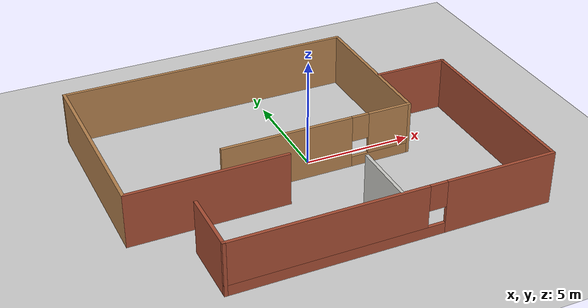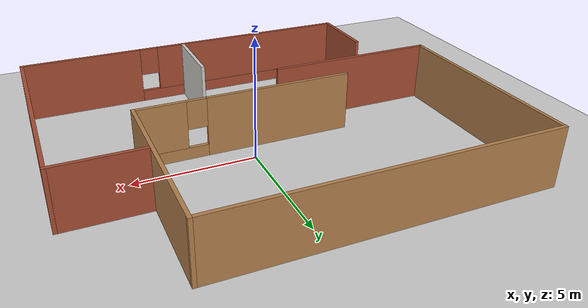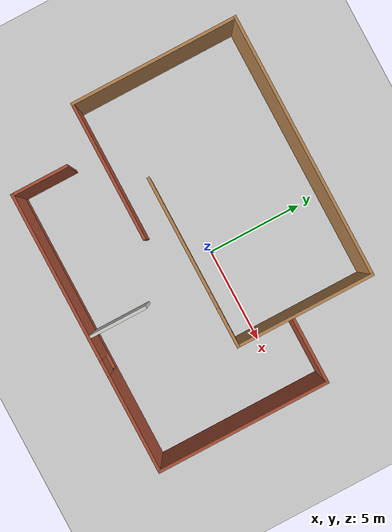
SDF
<sdf version="1.6">
 <world name="default">
  <light name="sun" type="directional">
   <pose>0 0 10 0 -0 0</pose>
   <diffuse>0.8 0.8 0.8 1</diffuse>
   <specular>0.2 0.2 0.2 1</specular>
   <attenuation>
    <range>1000</range>
    <constant>0.9</constant>
    <linear>0.01</linear>
    <quadratic>0.001</quadratic>
   </attenuation>
   <direction>-0.5 0.1 -0.9</direction>
  </light>
  <model name="ground_plane">
   <static>1</static>
   <link name="link">
    <collision name="collision">
     <geometry><plane><normal>0 0 1</normal><size>100 100</size></plane></geometry>
     <surface>
      <contact><collide_bitmask>65535</collide_bitmask></contact>
      <friction><ode><mu>100</mu><mu2>50</mu2></ode></friction>
     </surface>
    </collision>
    <visual name="visual">
     <cast_shadows>0</cast_shadows>
     <geometry><plane><normal>0 0 1</normal><size>100 100</size></plane></geometry>
     <material>
      <script><uri>file://media/materials/scripts/gazebo.material</uri><name>Gazebo/Grey</name></script>
     </material>
    </visual>
   </link>
  </model>
  <gravity>0 0 -9.8</gravity>
  <magnetic_field>6e-06 2.3e-05 -4.2e-05</magnetic_field>
  <atmosphere type="adiabatic"/>
  <physics name="default_physics" default="0" type="ode">
   <max_step_size>0.001</max_step_size>
   <real_time_factor>1</real_time_factor>
   <real_time_update_rate>1000</real_time_update_rate>
  </physics>
  <scene><ambient>0.4 0.4 0.4 1</ambient><background>0.7 0.7 0.7 1</background><shadows>1</shadows></scene>
  <audio><device>default</device></audio>
  <spherical_coordinates>
   <surface_model>EARTH_WGS84</surface_model>
   <latitude_deg>0</latitude_deg>
   <longitude_deg>0</longitude_deg>
   <elevation>0</elevation>
   <heading_deg>0</heading_deg>
  </spherical_coordinates>
  <model name="map">
   <pose>-0.654127 -0.438316 0 0 -0 0</pose>
   <link name="Wall_0">
    <pose>0.659125 -0.568614 0 0 -0 0</pose>
    <visual name="Wall_0_Visual_0">
     <pose>-1.44367 0 1.25 0 -0 0</pose>
     <geometry><box><size>6.11267 0.15 2.5</size></box></geometry>
     <material>
      <script><uri>file://media/materials/scripts/gazebo.material</uri><name>Gazebo/Wood</name></script>
      <ambient>1 1 1 1</ambient>
     </material>
     <meta><layer>0</layer></meta>
    </visual>
    <collision name="Wall_0_Collision_0">
     <geometry><box><size>6.11267 0.15 2.5</size></box></geometry>
     <pose>-1.44367 0 1.25 0 -0 0</pose>
    </collision>
    <visual name="Wall_0_Visual_1">
     <pose>3.05633 0 0.25 0 -0 0</pose>
     <geometry><box><size>2.88733 0.15 0.5</size></box></geometry>
     <material>
      <script><uri>file://media/materials/scripts/gazebo.material</uri><name>Gazebo/Wood</name></script>
      <ambient>1 1 1 1</ambient>
     </material>
     <meta><layer>0</layer></meta>
    </visual>
    <collision name="Wall_0_Collision_1">
     <geometry><box><size>2.88733 0.15 0.5</size></box></geometry>
     <pose>3.05633 0 0.25 0 -0 0</pose>
    </collision>
    <visual name="Wall_0_Visual_2">
     <pose>3.45633 0 1.5 0 -0 0</pose>
     <geometry><box><size>2.08733 0.15 2</size></box></geometry>
     <material>
      <script><uri>file://media/materials/scripts/gazebo.material</uri><name>Gazebo/Wood</name></script>
      <ambient>1 1 1 1</ambient>
     </material>
     <meta><layer>0</layer></meta>
    </visual>
    <collision name="Wall_0_Collision_2">
     <geometry><box><size>2.08733 0.15 2</size></box></geometry>
     <pose>3.45633 0 1.5 0 -0 0</pose>
    </collision>
    <visual name="Wall_0_Visual_3">
     <pose>2.01267 0 1.9 0 -0 0</pose>
     <geometry><box><size>0.8 0.15 1.2</size></box></geometry>
     <material>
      <script><uri>file://media/materials/scripts/gazebo.material</uri><name>Gazebo/Wood</name></script>
      <ambient>1 1 1 1</ambient>
     </material>
     <meta><layer>0</layer></meta>
    </visual>
    <collision name="Wall_0_Collision_3">
     <geometry><box><size>0.8 0.15 1.2</size></box></geometry>
     <pose>2.01267 0 1.9 0 -0 0</pose>
    </collision>
   </link>
   <link name="Wall_1">
    <collision name="Wall_1_Collision">
     <geometry><box><size>7.25 0.15 2.5</size></box></geometry>
     <pose>0 0 1.25 0 -0 0</pose>
    </collision>
    <visual name="Wall_1_Visual">
     <pose>0 0 1.25 0 -0 0</pose>
     <geometry><box><size>7.25 0.15 2.5</size></box></geometry>
     <material>
      <script><uri>file://media/materials/scripts/gazebo.material</uri><name>Gazebo/Wood</name></script>
      <ambient>1 1 1 1</ambient>
     </material>
     <meta><layer>0</layer></meta>
    </visual>
    <pose>5.08413 2.98138 0 0 -0 1.5708</pose>
   </link>
   <link name="Wall_10">
    <collision name="Wall_10_Collision">
     <geometry><box><size>9 0.15 2.5</size></box></geometry>
     <pose>0 0 1.25 0 -0 0</pose>
    </collision>
    <visual name="Wall_10_Visual">
     <pose>0 0 1.25 0 -0 0</pose>
     <geometry><box><size>9 0.15 2.5</size></box></geometry>
     <material>
      <script><uri>file://media/materials/scripts/gazebo.material</uri><name>Gazebo/Bricks</name></script>
      <ambient>1 1 1 1</ambient>
     </material>
     <meta><layer>0</layer></meta>
    </visual>
    <pose>8.51587 -2.10638 0 0 -0 -1.5708</pose>
   </link>
   <link name="Wall_11">
    <pose>1.21587 -6.53139 0 0 -0 3.14159</pose>
    <visual name="Wall_11_Visual_0">
     <pose>-4.81659 0 1.25 0 -0 0</pose>
     <geometry><box><size>5.11681 0.15 2.5</size></box></geometry>
     <material>
      <script><uri>file://media/materials/scripts/gazebo.material</uri><name>Gazebo/Bricks</name></script>
      <ambient>1 1 1 1</ambient>
     </material>
     <meta><layer>0</layer></meta>
    </visual>
    <collision name="Wall_11_Collision_0">
     <geometry><box><size>5.11681 0.15 2.5</size></box></geometry>
     <pose>-4.81659 0 1.25 0 -0 0</pose>
    </collision>
    <visual name="Wall_11_Visual_1">
     <pose>2.55841 0 0.25 0 -0 0</pose>
     <geometry><box><size>9.63319 0.15 0.5</size></box></geometry>
     <material>
      <script><uri>file://media/materials/scripts/gazebo.material</uri><name>Gazebo/Bricks</name></script>
      <ambient>1 1 1 1</ambient>
     </material>
     <meta><layer>0</layer></meta>
    </visual>
    <collision name="Wall_11_Collision_1">
     <geometry><box><size>9.63319 0.15 0.5</size></box></geometry>
     <pose>2.55841 0 0.25 0 -0 0</pose>
    </collision>
    <visual name="Wall_11_Visual_2">
     <pose>2.95841 0 1.5 0 -0 0</pose>
     <geometry><box><size>8.83319 0.15 2</size></box></geometry>
     <material>
      <script><uri>file://media/materials/scripts/gazebo.material</uri><name>Gazebo/Bricks</name></script>
      <ambient>1 1 1 1</ambient>
     </material>
     <meta><layer>0</layer></meta>
    </visual>
    <collision name="Wall_11_Collision_2">
     <geometry><box><size>8.83319 0.15 2</size></box></geometry>
     <pose>2.95841 0 1.5 0 -0 0</pose>
    </collision>
    <visual name="Wall_11_Visual_3">
     <pose>-1.85819 0 1.9 0 -0 0</pose>
     <geometry><box><size>0.8 0.15 1.2</size></box></geometry>
     <material>
      <script><uri>file://media/materials/scripts/gazebo.material</uri><name>Gazebo/Bricks</name></script>
      <ambient>1 1 1 1</ambient>
     </material>
     <meta><layer>0</layer></meta>
    </visual>
    <collision name="Wall_11_Collision_3">
     <geometry><box><size>0.8 0.15 1.2</size></box></geometry>
     <pose>-1.85819 0 1.9 0 -0 0</pose>
    </collision>
   </link>
   <link name="Wall_12">
    <collision name="Wall_12_Collision">
     <geometry><box><size>3 0.15 2.5</size></box></geometry>
     <pose>0 0 1.25 0 -0 0</pose>
    </collision>
    <visual name="Wall_12_Visual">
     <pose>0 0 1.25 0 -0 0</pose>
     <geometry><box><size>3 0.15 2.5</size></box></geometry>
     <material>
      <script><uri>file://media/materials/scripts/gazebo.material</uri><name>Gazebo/Bricks</name></script>
      <ambient>1 1 1 1</ambient>
     </material>
     <meta><layer>0</layer></meta>
    </visual>
    <pose>-6.08413 -5.10639 0 0 -0 1.5708</pose>
   </link>
   <link name="Wall_2">
    <collision name="Wall_2_Collision">
     <geometry><box><size>13.75 0.15 2.5</size></box></geometry>
     <pose>0 0 1.25 0 -0 0</pose>
    </collision>
    <visual name="Wall_2_Visual">
     <pose>0 0 1.25 0 -0 0</pose>
     <geometry><box><size>13.75 0.15 2.5</size></box></geometry>
     <material>
      <script><uri>file://media/materials/scripts/gazebo.material</uri><name>Gazebo/Wood</name></script>
      <ambient>1 1 1 1</ambient>
     </material>
     <meta><layer>0</layer></meta>
    </visual>
    <pose>-1.71588 6.53139 0 0 -0 3.14159</pose>
   </link>
   <link name="Wall_3">
    <collision name="Wall_3_Collision">
     <geometry><box><size>8.75 0.15 2.5</size></box></geometry>
     <pose>0 0 1.25 0 -0 0</pose>
    </collision>
    <visual name="Wall_3_Visual">
     <pose>0 0 1.25 0 -0 0</pose>
     <geometry><box><size>8.75 0.15 2.5</size></box></geometry>
     <material>
      <script><uri>file://media/materials/scripts/gazebo.material</uri><name>Gazebo/Wood</name></script>
      <ambient>1 1 1 1</ambient>
     </material>
     <meta><layer>0</layer></meta>
    </visual>
    <pose>-8.51587 2.23139 0 0 -0 -1.5708</pose>
   </link>
   <link name="Wall_4">
    <collision name="Wall_4_Collision">
     <geometry><box><size>7.25 0.15 2.5</size></box></geometry>
     <pose>0 0 1.25 0 -0 0</pose>
    </collision>
    <visual name="Wall_4_Visual">
     <pose>0 0 1.25 0 -0 0</pose>
     <geometry><box><size>7.25 0.15 2.5</size></box></geometry>
     <material>
      <script><uri>file://media/materials/scripts/gazebo.material</uri><name>Gazebo/Bricks</name></script>
      <ambient>1 1 1 1</ambient>
     </material>
     <meta><layer>0</layer></meta>
    </visual>
    <pose>-4.96587 -2.06861 0 0 -0 0</pose>
   </link>
   <link name="Wall_6">
    <collision name="Wall_6_Collision">
     <geometry><box><size>3 0.15 2.5</size></box></geometry>
     <pose>0 0 1.25 0 -0 0</pose>
    </collision>
    <visual name="Wall_6_Visual">
     <pose>0 0 1.25 0 -0 0</pose>
     <geometry><box><size>3 0.15 2.5</size></box></geometry>
     <material>
      <script><uri>file://media/materials/scripts/gazebo.material</uri><name>Gazebo/CeilingTiled</name></script>
      <ambient>1 1 1 1</ambient>
     </material>
     <meta><layer>0</layer></meta>
    </visual>
    <pose>1.46072 -4.98707 0 0 -0 -1.5708</pose>
   </link>
   <link name="Wall_9">
    <collision name="Wall_9_Collision">
     <geometry><box><size>3.5 0.15 2.5</size></box></geometry>
     <pose>0 0 1.25 0 -0 0</pose>
    </collision>
    <visual name="Wall_9_Visual">
     <pose>0 0 1.25 0 -0 0</pose>
     <geometry><box><size>3.5 0.15 2.5</size></box></geometry>
     <material>
      <script><uri>file://media/materials/scripts/gazebo.material</uri><name>Gazebo/Bricks</name></script>
      <ambient>1 1 1 1</ambient>
     </material>
     <meta><layer>0</layer></meta>
    </visual>
    <pose>6.84087 2.31861 0 0 -0 0</pose>
   </link>
   <static>1</static>
  </model>
 </world>
</sdf>
